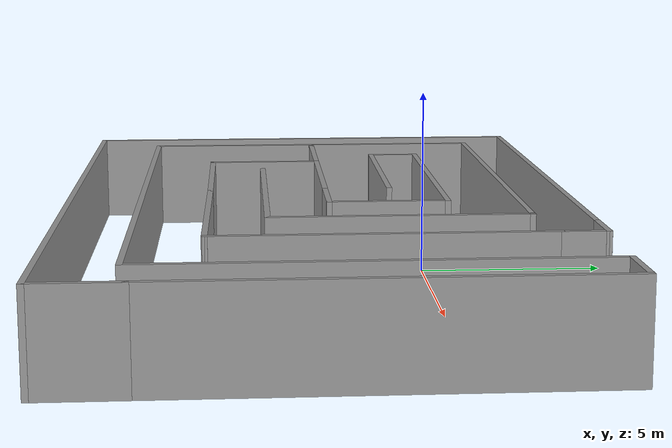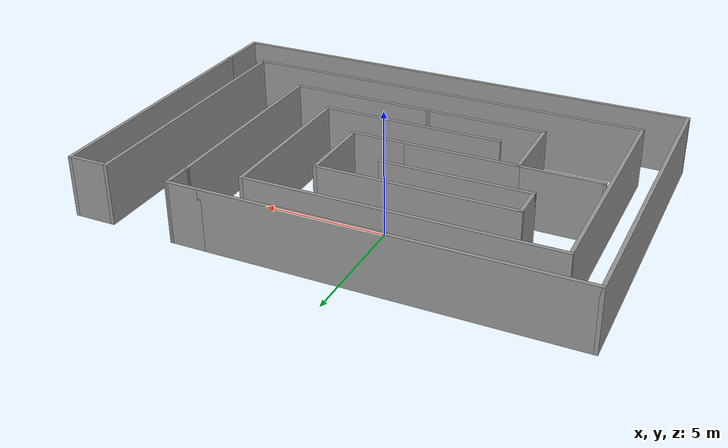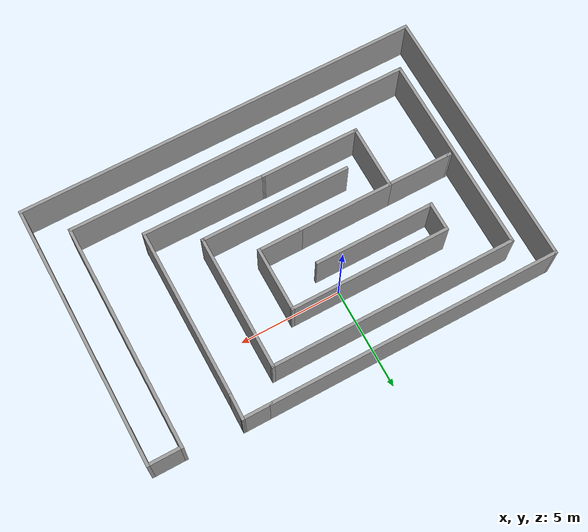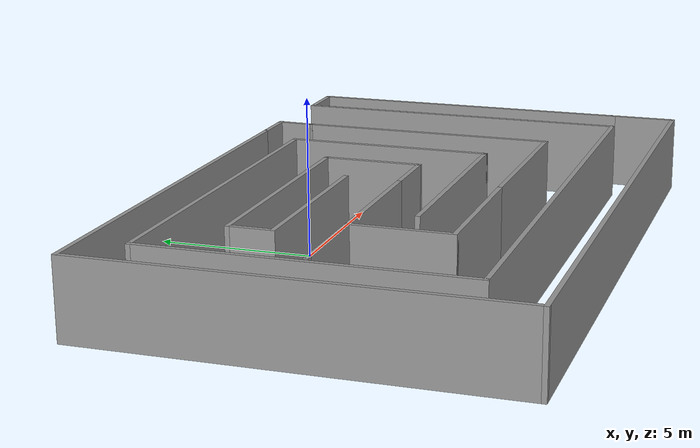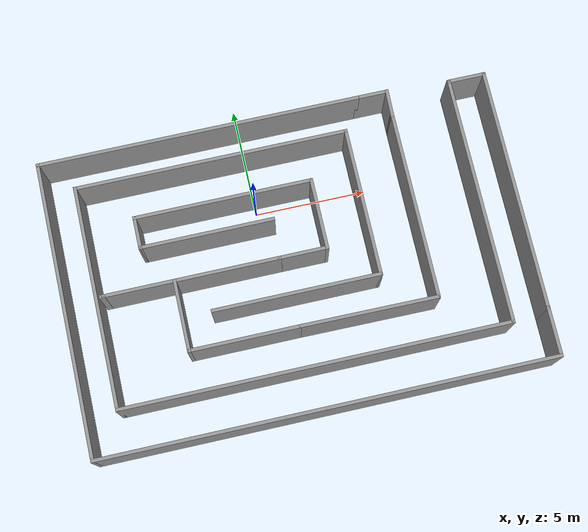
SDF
<?xml version='1.0'?>
<sdf version='1.7'>
  <model name='home'>
    <pose>1.13079 -2.92408 0 0 -0 0</pose>
    <link name='Wall_0'>
      <collision name='Wall_0_Collision'>
        <geometry>
          <box>
            <size>4.75 0.15 2.5</size>
          </box>
        </geometry>
        <pose>0 0 1.25 0 -0 0</pose>
      </collision>
      <visual name='Wall_0_Visual'>
        <pose>0 0 1.25 0 -0 0</pose>
        <geometry>
          <box>
            <size>4.75 0.15 2.5</size>
          </box>
        </geometry>
        <material>
          <script>
            <uri>file://media/materials/scripts/gazebo.material</uri>
            <name>Gazebo/Grey</name>
          </script>
          <ambient>1 1 1 1</ambient>
        </material>
        <meta>
          <layer>0</layer>
        </meta>
      </visual>
      <pose>-2.93079 0.184083 0 0 -0 3.14159</pose>
    </link>
    <link name='Wall_1'>
      <collision name='Wall_1_Collision'>
        <geometry>
          <box>
            <size>3.25 0.15 2.5</size>
          </box>
        </geometry>
        <pose>0 0 1.25 0 -0 0</pose>
      </collision>
      <visual name='Wall_1_Visual'>
        <pose>0 0 1.25 0 -0 0</pose>
        <geometry>
          <box>
            <size>3.25 0.15 2.5</size>
          </box>
        </geometry>
        <material>
          <script>
            <uri>file://media/materials/scripts/gazebo.material</uri>
            <name>Gazebo/Grey</name>
          </script>
          <ambient>1 1 1 1</ambient>
        </material>
        <meta>
          <layer>0</layer>
        </meta>
      </visual>
      <pose>-5.23079 -1.36592 0 0 -0 -1.5708</pose>
    </link>
    <link name='Wall_10'>
      <collision name='Wall_10_Collision'>
        <geometry>
          <box>
            <size>17.25 0.15 2.5</size>
          </box>
        </geometry>
        <pose>0 0 1.25 0 -0 0</pose>
      </collision>
      <visual name='Wall_10_Visual'>
        <pose>0 0 1.25 0 -0 0</pose>
        <geometry>
          <box>
            <size>17.25 0.15 2.5</size>
          </box>
        </geometry>
        <material>
          <script>
            <uri>file://media/materials/scripts/gazebo.material</uri>
            <name>Gazebo/Grey</name>
          </script>
          <ambient>1 1 1 1</ambient>
        </material>
        <meta>
          <layer>0</layer>
        </meta>
      </visual>
      <pose>-0.1 -4.70085 0 0 -0 0</pose>
    </link>
    <link name='Wall_11'>
      <collision name='Wall_11_Collision'>
        <geometry>
          <box>
            <size>11.25 0.15 2.5</size>
          </box>
        </geometry>
        <pose>0 0 1.25 0 -0 0</pose>
      </collision>
      <visual name='Wall_11_Visual'>
        <pose>0 0 1.25 0 -0 0</pose>
        <geometry>
          <box>
            <size>11.25 0.15 2.5</size>
          </box>
        </geometry>
        <material>
          <script>
            <uri>file://media/materials/scripts/gazebo.material</uri>
            <name>Gazebo/Grey</name>
          </script>
          <ambient>1 1 1 1</ambient>
        </material>
        <meta>
          <layer>0</layer>
        </meta>
      </visual>
      <pose>8.45 0.849152 0 0 -0 1.5708</pose>
    </link>
    <link name='Wall_12'>
      <collision name='Wall_12_Collision'>
        <geometry>
          <box>
            <size>1.75 0.15 2.5</size>
          </box>
        </geometry>
        <pose>0 0 1.25 0 -0 0</pose>
      </collision>
      <visual name='Wall_12_Visual'>
        <pose>0 0 1.25 0 -0 0</pose>
        <geometry>
          <box>
            <size>1.75 0.15 2.5</size>
          </box>
        </geometry>
        <material>
          <script>
            <uri>file://media/materials/scripts/gazebo.material</uri>
            <name>Gazebo/Grey</name>
          </script>
          <ambient>1 1 1 1</ambient>
        </material>
        <meta>
          <layer>0</layer>
        </meta>
      </visual>
      <pose>9.25 6.39915 0 0 -0 0</pose>
    </link>
    <link name='Wall_13'>
      <collision name='Wall_13_Collision'>
        <geometry>
          <box>
            <size>11 0.15 2.5</size>
          </box>
        </geometry>
        <pose>0 0 1.25 0 -0 0</pose>
      </collision>
      <visual name='Wall_13_Visual'>
        <pose>0 0 1.25 0 -0 0</pose>
        <geometry>
          <box>
            <size>11 0.15 2.5</size>
          </box>
        </geometry>
        <material>
          <script>
            <uri>file://media/materials/scripts/gazebo.material</uri>
            <name>Gazebo/Grey</name>
          </script>
          <ambient>1 1 1 1</ambient>
        </material>
        <meta>
          <layer>0</layer>
        </meta>
      </visual>
      <pose>10.05 0.974152 0 0 -0 -1.5708</pose>
    </link>
    <link name='Wall_14'>
      <collision name='Wall_14_Collision'>
        <geometry>
          <box>
            <size>2.25 0.15 2.5</size>
          </box>
        </geometry>
        <pose>0 0 1.25 0 -0 0</pose>
      </collision>
      <visual name='Wall_14_Visual'>
        <pose>0 0 1.25 0 -0 0</pose>
        <geometry>
          <box>
            <size>2.25 0.15 2.5</size>
          </box>
        </geometry>
        <material>
          <script>
            <uri>file://media/materials/scripts/gazebo.material</uri>
            <name>Gazebo/Grey</name>
          </script>
          <ambient>1 1 1 1</ambient>
        </material>
        <meta>
          <layer>0</layer>
        </meta>
      </visual>
      <pose>10.05 -5.50085 0 0 -0 -1.5708</pose>
    </link>
    <link name='Wall_15'>
      <collision name='Wall_15_Collision'>
        <geometry>
          <box>
            <size>20.25 0.15 2.5</size>
          </box>
        </geometry>
        <pose>0 0 1.25 0 -0 0</pose>
      </collision>
      <visual name='Wall_15_Visual'>
        <pose>0 0 1.25 0 -0 0</pose>
        <geometry>
          <box>
            <size>20.25 0.15 2.5</size>
          </box>
        </geometry>
        <material>
          <script>
            <uri>file://media/materials/scripts/gazebo.material</uri>
            <name>Gazebo/Grey</name>
          </script>
          <ambient>1 1 1 1</ambient>
        </material>
        <meta>
          <layer>0</layer>
        </meta>
      </visual>
      <pose>0 -6.55085 0 0 -0 3.14159</pose>
    </link>
    <link name='Wall_16'>
      <collision name='Wall_16_Collision'>
        <geometry>
          <box>
            <size>13.25 0.15 2.5</size>
          </box>
        </geometry>
        <pose>0 0 1.25 0 -0 0</pose>
      </collision>
      <visual name='Wall_16_Visual'>
        <pose>0 0 1.25 0 -0 0</pose>
        <geometry>
          <box>
            <size>13.25 0.15 2.5</size>
          </box>
        </geometry>
        <material>
          <script>
            <uri>file://media/materials/scripts/gazebo.material</uri>
            <name>Gazebo/Grey</name>
          </script>
          <ambient>1 1 1 1</ambient>
        </material>
        <meta>
          <layer>0</layer>
        </meta>
      </visual>
      <pose>-10.05 -0.000848 0 0 -0 1.5708</pose>
    </link>
    <link name='Wall_17'>
      <collision name='Wall_17_Collision'>
        <geometry>
          <box>
            <size>14.5 0.15 2.5</size>
          </box>
        </geometry>
        <pose>0 0 1.25 0 -0 0</pose>
      </collision>
      <visual name='Wall_17_Visual'>
        <pose>0 0 1.25 0 -0 0</pose>
        <geometry>
          <box>
            <size>14.5 0.15 2.5</size>
          </box>
        </geometry>
        <material>
          <script>
            <uri>file://media/materials/scripts/gazebo.material</uri>
            <name>Gazebo/Grey</name>
          </script>
          <ambient>1 1 1 1</ambient>
        </material>
        <meta>
          <layer>0</layer>
        </meta>
      </visual>
      <pose>-2.875 6.54915 0 0 -0 0</pose>
    </link>
    <link name='Wall_18'>
      <collision name='Wall_18_Collision'>
        <geometry>
          <box>
            <size>1.5 0.15 2.5</size>
          </box>
        </geometry>
        <pose>0 0 1.25 0 -0 0</pose>
      </collision>
      <visual name='Wall_18_Visual'>
        <pose>0 0 1.25 0 -0 0</pose>
        <geometry>
          <box>
            <size>1.5 0.15 2.5</size>
          </box>
        </geometry>
        <material>
          <script>
            <uri>file://media/materials/scripts/gazebo.material</uri>
            <name>Gazebo/Grey</name>
          </script>
          <ambient>1 1 1 1</ambient>
        </material>
        <meta>
          <layer>0</layer>
        </meta>
      </visual>
      <pose>4.975 6.54915 0 0 -0 0</pose>
    </link>
    <link name='Wall_19'>
      <collision name='Wall_19_Collision'>
        <geometry>
          <box>
            <size>1.28768 0.15 2.5</size>
          </box>
        </geometry>
        <pose>0 0 1.25 0 -0 0</pose>
      </collision>
      <visual name='Wall_19_Visual'>
        <pose>0 0 1.25 0 -0 0</pose>
        <geometry>
          <box>
            <size>1.28768 0.15 2.5</size>
          </box>
        </geometry>
        <material>
          <script>
            <uri>file://media/materials/scripts/gazebo.material</uri>
            <name>Gazebo/Grey</name>
          </script>
          <ambient>1 1 1 1</ambient>
        </material>
        <meta>
          <layer>0</layer>
        </meta>
      </visual>
      <pose>5.63697 5.98046 0 0 -0 -1.5937</pose>
    </link>
    <link name='Wall_2'>
      <collision name='Wall_2_Collision'>
        <geometry>
          <box>
            <size>5 0.15 2.5</size>
          </box>
        </geometry>
        <pose>0 0 1.25 0 -0 0</pose>
      </collision>
      <visual name='Wall_2_Visual'>
        <pose>0 0 1.25 0 -0 0</pose>
        <geometry>
          <box>
            <size>5 0.15 2.5</size>
          </box>
        </geometry>
        <material>
          <script>
            <uri>file://media/materials/scripts/gazebo.material</uri>
            <name>Gazebo/Grey</name>
          </script>
          <ambient>1 1 1 1</ambient>
        </material>
        <meta>
          <layer>0</layer>
        </meta>
      </visual>
      <pose>-2.80579 -2.91592 0 0 -0 0</pose>
    </link>
    <link name='Wall_21'>
      <collision name='Wall_21_Collision'>
        <geometry>
          <box>
            <size>2.25 0.15 2.5</size>
          </box>
        </geometry>
        <pose>0 0 1.25 0 -0 0</pose>
      </collision>
      <visual name='Wall_21_Visual'>
        <pose>0 0 1.25 0 -0 0</pose>
        <geometry>
          <box>
            <size>2.25 0.15 2.5</size>
          </box>
        </geometry>
        <material>
          <script>
            <uri>file://media/materials/scripts/gazebo.material</uri>
            <name>Gazebo/Grey</name>
          </script>
          <ambient>1 1 1 1</ambient>
        </material>
        <meta>
          <layer>0</layer>
        </meta>
      </visual>
      <pose>0.419214 0.184083 0 0 -0 0</pose>
    </link>
    <link name='Wall_22'>
      <collision name='Wall_22_Collision'>
        <geometry>
          <box>
            <size>3.25 0.15 2.5</size>
          </box>
        </geometry>
        <pose>0 0 1.25 0 -0 0</pose>
      </collision>
      <visual name='Wall_22_Visual'>
        <pose>0 0 1.25 0 -0 0</pose>
        <geometry>
          <box>
            <size>3.25 0.15 2.5</size>
          </box>
        </geometry>
        <material>
          <script>
            <uri>file://media/materials/scripts/gazebo.material</uri>
            <name>Gazebo/Grey</name>
          </script>
          <ambient>1 1 1 1</ambient>
        </material>
        <meta>
          <layer>0</layer>
        </meta>
      </visual>
      <pose>1.46921 1.73408 0 0 -0 1.5708</pose>
    </link>
    <link name='Wall_23'>
      <collision name='Wall_23_Collision'>
        <geometry>
          <box>
            <size>8 0.15 2.5</size>
          </box>
        </geometry>
        <pose>0 0 1.25 0 -0 0</pose>
      </collision>
      <visual name='Wall_23_Visual'>
        <pose>0 0 1.25 0 -0 0</pose>
        <geometry>
          <box>
            <size>8 0.15 2.5</size>
          </box>
        </geometry>
        <material>
          <script>
            <uri>file://media/materials/scripts/gazebo.material</uri>
            <name>Gazebo/Grey</name>
          </script>
          <ambient>1 1 1 1</ambient>
        </material>
        <meta>
          <layer>0</layer>
        </meta>
      </visual>
      <pose>-2.45579 3.28408 0 0 -0 3.14159</pose>
    </link>
    <link name='Wall_24'>
      <collision name='Wall_24_Collision'>
        <geometry>
          <box>
            <size>1.5 0.15 2.5</size>
          </box>
        </geometry>
        <pose>0 0 1.25 0 -0 0</pose>
      </collision>
      <visual name='Wall_24_Visual'>
        <pose>0 0 1.25 0 -0 0</pose>
        <geometry>
          <box>
            <size>1.5 0.15 2.5</size>
          </box>
        </geometry>
        <material>
          <script>
            <uri>file://media/materials/scripts/gazebo.material</uri>
            <name>Gazebo/Grey</name>
          </script>
          <ambient>1 1 1 1</ambient>
        </material>
        <meta>
          <layer>0</layer>
        </meta>
      </visual>
      <pose>-6.38079 2.60908 0 0 -0 -1.5708</pose>
    </link>
    <link name='Wall_25'>
      <collision name='Wall_25_Collision'>
        <geometry>
          <box>
            <size>6 0.15 2.5</size>
          </box>
        </geometry>
        <pose>0 0 1.25 0 -0 0</pose>
      </collision>
      <visual name='Wall_25_Visual'>
        <pose>0 0 1.25 0 -0 0</pose>
        <geometry>
          <box>
            <size>6 0.15 2.5</size>
          </box>
        </geometry>
        <material>
          <script>
            <uri>file://media/materials/scripts/gazebo.material</uri>
            <name>Gazebo/Grey</name>
          </script>
          <ambient>1 1 1 1</ambient>
        </material>
        <meta>
          <layer>0</layer>
        </meta>
      </visual>
      <pose>-3.45579 1.93408 0 0 -0 0</pose>
    </link>
    <link name='Wall_27'>
      <collision name='Wall_27_Collision'>
        <geometry>
          <box>
            <size>3.25 0.15 2.5</size>
          </box>
        </geometry>
        <pose>0 0 1.25 0 -0 0</pose>
      </collision>
      <visual name='Wall_27_Visual'>
        <pose>0 0 1.25 0 -0 0</pose>
        <geometry>
          <box>
            <size>3.25 0.15 2.5</size>
          </box>
        </geometry>
        <material>
          <script>
            <uri>file://media/materials/scripts/gazebo.material</uri>
            <name>Gazebo/Grey</name>
          </script>
          <ambient>1 1 1 1</ambient>
        </material>
        <meta>
          <layer>0</layer>
        </meta>
      </visual>
      <pose>-6.78079 0.184083 0 0 -0 3.14159</pose>
    </link>
    <link name='Wall_28'>
      <collision name='Wall_28_Collision'>
        <geometry>
          <box>
            <size>0.25 0.15 2.5</size>
          </box>
        </geometry>
        <pose>0 0 1.25 0 -0 0</pose>
      </collision>
      <visual name='Wall_28_Visual'>
        <pose>0 0 1.25 0 -0 0</pose>
        <geometry>
          <box>
            <size>0.25 0.15 2.5</size>
          </box>
        </geometry>
        <material>
          <script>
            <uri>file://media/materials/scripts/gazebo.material</uri>
            <name>Gazebo/Grey</name>
          </script>
          <ambient>1 1 1 1</ambient>
        </material>
        <meta>
          <layer>0</layer>
        </meta>
      </visual>
      <pose>-8.38079 0.184083 0 0 -0 3.14159</pose>
    </link>
    <link name='Wall_3'>
      <collision name='Wall_3_Collision'>
        <geometry>
          <box>
            <size>6.15476 0.15 2.5</size>
          </box>
        </geometry>
        <pose>0 0 1.25 0 -0 0</pose>
      </collision>
      <visual name='Wall_3_Visual'>
        <pose>0 0 1.25 0 -0 0</pose>
        <geometry>
          <box>
            <size>6.15476 0.15 2.5</size>
          </box>
        </geometry>
        <material>
          <script>
            <uri>file://media/materials/scripts/gazebo.material</uri>
            <name>Gazebo/Grey</name>
          </script>
          <ambient>1 1 1 1</ambient>
        </material>
        <meta>
          <layer>0</layer>
        </meta>
      </visual>
      <pose>2.62158 -2.93713 0 0 -0 -0.007065</pose>
    </link>
    <link name='Wall_4'>
      <collision name='Wall_4_Collision'>
        <geometry>
          <box>
            <size>8.5 0.15 2.5</size>
          </box>
        </geometry>
        <pose>0 0 1.25 0 -0 0</pose>
      </collision>
      <visual name='Wall_4_Visual'>
        <pose>0 0 1.25 0 -0 0</pose>
        <geometry>
          <box>
            <size>8.5 0.15 2.5</size>
          </box>
        </geometry>
        <material>
          <script>
            <uri>file://media/materials/scripts/gazebo.material</uri>
            <name>Gazebo/Grey</name>
          </script>
          <ambient>1 1 1 1</ambient>
        </material>
        <meta>
          <layer>0</layer>
        </meta>
      </visual>
      <pose>5.62395 1.23677 0 0 -0 1.5708</pose>
    </link>
    <link name='Wall_6'>
      <collision name='Wall_6_Collision'>
        <geometry>
          <box>
            <size>7.5 0.15 2.5</size>
          </box>
        </geometry>
        <pose>0 0 1.25 0 -0 0</pose>
      </collision>
      <visual name='Wall_6_Visual'>
        <pose>0 0 1.25 0 -0 0</pose>
        <geometry>
          <box>
            <size>7.5 0.15 2.5</size>
          </box>
        </geometry>
        <material>
          <script>
            <uri>file://media/materials/scripts/gazebo.material</uri>
            <name>Gazebo/Grey</name>
          </script>
          <ambient>1 1 1 1</ambient>
        </material>
        <meta>
          <layer>0</layer>
        </meta>
      </visual>
      <pose>-0.225 -1.45085 0 0 -0 0</pose>
    </link>
    <link name='Wall_7'>
      <collision name='Wall_7_Collision'>
        <geometry>
          <box>
            <size>6.75 0.15 2.5</size>
          </box>
        </geometry>
        <pose>0 0 1.25 0 -0 0</pose>
      </collision>
      <visual name='Wall_7_Visual'>
        <pose>0 0 1.25 0 -0 0</pose>
        <geometry>
          <box>
            <size>6.75 0.15 2.5</size>
          </box>
        </geometry>
        <material>
          <script>
            <uri>file://media/materials/scripts/gazebo.material</uri>
            <name>Gazebo/Grey</name>
          </script>
          <ambient>1 1 1 1</ambient>
        </material>
        <meta>
          <layer>0</layer>
        </meta>
      </visual>
      <pose>3.45 1.84915 0 0 -0 1.5708</pose>
    </link>
    <link name='Wall_8'>
      <collision name='Wall_8_Collision'>
        <geometry>
          <box>
            <size>12.25 0.15 2.5</size>
          </box>
        </geometry>
        <pose>0 0 1.25 0 -0 0</pose>
      </collision>
      <visual name='Wall_8_Visual'>
        <pose>0 0 1.25 0 -0 0</pose>
        <geometry>
          <box>
            <size>12.25 0.15 2.5</size>
          </box>
        </geometry>
        <material>
          <script>
            <uri>file://media/materials/scripts/gazebo.material</uri>
            <name>Gazebo/Grey</name>
          </script>
          <ambient>1 1 1 1</ambient>
        </material>
        <meta>
          <layer>0</layer>
        </meta>
      </visual>
      <pose>-2.6 5.14915 0 0 -0 3.14159</pose>
    </link>
    <link name='Wall_9'>
      <collision name='Wall_9_Collision'>
        <geometry>
          <box>
            <size>10 0.15 2.5</size>
          </box>
        </geometry>
        <pose>0 0 1.25 0 -0 0</pose>
      </collision>
      <visual name='Wall_9_Visual'>
        <pose>0 0 1.25 0 -0 0</pose>
        <geometry>
          <box>
            <size>10 0.15 2.5</size>
          </box>
        </geometry>
        <material>
          <script>
            <uri>file://media/materials/scripts/gazebo.material</uri>
            <name>Gazebo/Grey</name>
          </script>
          <ambient>1 1 1 1</ambient>
        </material>
        <meta>
          <layer>0</layer>
        </meta>
      </visual>
      <pose>-8.65 0.224152 0 0 -0 -1.5708</pose>
    </link>
    <static>1</static>
  </model>
</sdf>
